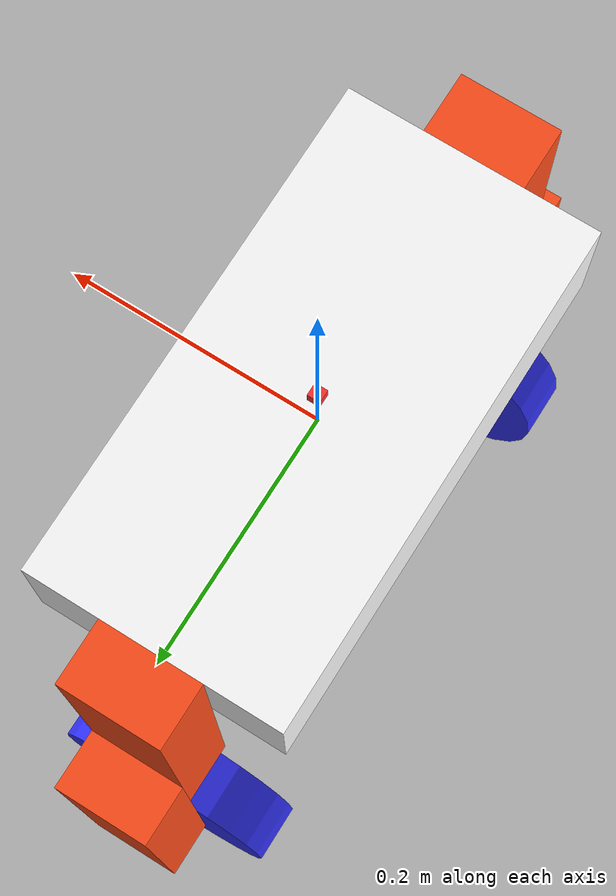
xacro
<?xml version="1.0"?>
<robot xmlns:xacro="http://www.ros.org/wiki/xacro"  name="bipedal_robot">

	<xacro:include filename="include.xacro" />

	<!--*** Define Properties ***-->

	<!-- Base Properties -->
	<xacro:property name="base_length" value="0.2" />
	<xacro:property name="base_height" value="0.1" />
	<xacro:property name="base_width" value="0.4" />
	<xacro:property name="base_mass" value="4" />

	<!-- Leg Properties -->
	<xacro:property name="leg_length" value="0.08" />
	<xacro:property name="leg_height" value="0.3" />
	<xacro:property name="leg_width" value="0.05" />
	<xacro:property name="angle_max" value="1.57" />
	<xacro:property name="angle_min" value="-1.57" />
	<xacro:property name="leg_mass" value="0.5" />

	<!-- Wheel Properties -->
	<xacro:property name="wheel_radius" value="0.1" />
	<xacro:property name="wheel_length" value="0.05" />
	<xacro:property name="wheel_mass" value="1" />

	<!--*** Define Macros ***-->

	<!-- Box Link Macro -->
	<xacro:macro name="box_macro" params="prefix origin_xyz origin_rpy box_size mass box_color">
		<link name="${prefix}_link">
			<visual>
				<origin xyz="${origin_xyz}" rpy="${origin_rpy}"/>
				<geometry>
					<box size="${box_size}" />
				</geometry>
				<material name="${box_color}" />
			</visual>
			<collision>
				<origin xyz="${origin_xyz}" rpy="${origin_rpy}"/>
				<geometry>
					<box size="${box_size}" />
				</geometry>
			</collision>
			<inertial>
				<origin xyz="0 0 0" rpy="0 0 0"/>
				<mass value="${mass}"/>
				<inertia ixx="0.01" ixy="0" ixz="0" iyy="0.01" iyz="0" izz="0.01"/>
			</inertial>
		</link>
	</xacro:macro>

	<!-- Cylinder Link Macro -->
	<xacro:macro name="cylinder_macro" params="prefix origin_xyz origin_rpy cylinder_radius cylinder_length mass">
		<link name="${prefix}_link">
			<visual>
				<origin xyz="${origin_xyz}" rpy="${origin_rpy}"/>
				<geometry>
					<cylinder radius="${cylinder_radius}" length="${cylinder_length}"/>
				</geometry>
				<material name="blue"/>
			</visual>
			<collision>
				<origin xyz="${origin_xyz}" rpy="${origin_rpy}"/>
				<geometry>
					<cylinder radius="${cylinder_radius}" length="${cylinder_length}"/>
				</geometry>
			</collision>
			<inertial>
				<origin xyz="0 0 0" rpy="0 0 0"/>
				<mass value="${mass}"/>
				<inertia ixx="0.01" ixy="0" ixz="0" iyy="0.01" iyz="0" izz="0.01"/>
			</inertial>
		</link>
	</xacro:macro>

	<!-- Revolute Joint Macro -->
	<xacro:macro name="revolute_macro" params="prefix parent child origin_xyz origin_rpy axis_xyz angle_min angle_max">
		<joint name="${prefix}_joint" type="revolute">
			<parent link="${parent}"/>
			<child link="${child}"/>
			<origin xyz="${origin_xyz}" rpy="${origin_rpy}"/>
			<axis xyz="${axis_xyz}"/>
			<limit lower="${angle_min}" upper="${angle_max}" velocity="100" effort="10"/>
			<dynamics damping="0.1" friction="0.1"/>
		</joint>
	</xacro:macro>

	<!-- Continuous Joint Macro -->
	<xacro:macro name="continuous_macro" params="prefix parent child origin_xyz origin_rpy axis_xyz">
		<joint name="${prefix}_joint" type="continuous">
			<parent link="${parent}"/>
			<child link="${child}"/>
			<origin xyz="${origin_xyz}" rpy="${origin_rpy}"/>
			<axis xyz="${axis_xyz}"/>
			<dynamics damping="0.1" friction="0.1"/>
			<limit velocity="100" effort="10"/>
		</joint>
	</xacro:macro>

	<!-- Initializing Macro -->

	<!-- Links -->
	<!-- World -->
	<xacro:box_macro prefix="base" origin_xyz="0 0 0" origin_rpy="0 0 0" box_size="${base_length} ${base_width} ${base_height}" mass="${base_mass}" box_color="white"/>
	<!-- Right Leg -->
	<xacro:box_macro prefix="right_upper_leg" origin_xyz="0 0 ${-leg_height/2+base_height/2}" origin_rpy="0 0 0" box_size="${leg_length} ${leg_width} ${leg_height}" mass="${leg_mass}" box_color="orange"/>
	<xacro:box_macro prefix="right_lower_leg" origin_xyz="0 0 ${-leg_height/2+base_height/2}" origin_rpy="0 0 0" box_size="${leg_length} ${leg_width} ${leg_height}" mass="${leg_mass}" box_color="orange"/>
	<xacro:cylinder_macro prefix="right_wheel" origin_xyz="0 0 0" origin_rpy="0 0 0" cylinder_radius="${wheel_radius}" cylinder_length="${wheel_length}" mass="${wheel_mass}"/>
	<!-- Left Leg -->
	<xacro:box_macro prefix="left_upper_leg" origin_xyz="0 0 ${-leg_height/2+base_height/2}" origin_rpy="0 0 0" box_size="${leg_length} ${leg_width} ${leg_height}" mass="${leg_mass}" box_color="orange"/>
	<xacro:box_macro prefix="left_lower_leg" origin_xyz="0 0 ${-leg_height/2+base_height/2}" origin_rpy="0 0 0" box_size="${leg_length} ${leg_width} ${leg_height}" mass="${leg_mass}" box_color="orange"/>
	<xacro:cylinder_macro prefix="left_wheel" origin_xyz="0 0 0" origin_rpy="0 0 0" cylinder_radius="${wheel_radius}" cylinder_length="${wheel_length}" mass="${wheel_mass}"/>
	<!-- IMU -->
	<link name="IMU_link">
		<inertial>
			<mass value="0.001"/>
			<origin rpy="0 0 0" xyz="0 0 0"/>
			<inertia ixx="0.0001" ixy="0" ixz="0" iyy="0.000001" iyz="0" izz="0.0001"/>
		</inertial>
		<visual>
			<origin rpy="0 0 0" xyz="0 0 0"/>
			<geometry>
				<box size="0.01 0.01 0.01"/>
			</geometry>
			<material name="red"/>
		</visual>
		<collision>
			<origin rpy="0 0 0" xyz="0 0 0"/>
			<geometry>
				<box size=".01 .01 .01"/>
			</geometry>
		</collision>
	</link>

	<!-- Joints -->
	<!-- Hip -->
	<xacro:revolute_macro prefix="hip_right" parent="base_link" child="right_upper_leg_link" origin_xyz="0 ${base_length+leg_width/2} 0" origin_rpy="0 0 0" axis_xyz="0 1 0" angle_min="${angle_min}" angle_max="${angle_max}"/>
	<xacro:revolute_macro prefix="hip_left" parent="base_link" child="left_upper_leg_link" origin_xyz="0 ${-base_length-leg_width/2} 0" origin_rpy="0 0 0" axis_xyz="0 1 0" angle_min="${angle_min}" angle_max="${angle_max}"/>
	<!-- Knee -->
	<xacro:revolute_macro prefix="knee_right" parent="right_upper_leg_link" child="right_lower_leg_link" origin_xyz="0 ${leg_width} ${-leg_height+base_height/2+leg_length/2}" origin_rpy="0 0 0" axis_xyz="0 1 0" angle_min="${angle_min}" angle_max="${angle_max}"/>
	<xacro:revolute_macro prefix="knee_left" parent="left_upper_leg_link" child="left_lower_leg_link" origin_xyz="0 ${-leg_width} ${-leg_height+base_height/2+leg_length/2}" origin_rpy="0 0 0" axis_xyz="0 1 0" angle_min="${angle_min}" angle_max="${angle_max}"/>
	<!-- Ankle -->
	<xacro:continuous_macro prefix="ankle_right" parent="right_lower_leg_link" child="right_wheel_link" origin_xyz="0 ${-leg_width} ${-leg_height+base_height/2+leg_length/2}" origin_rpy="1.57 0 0" axis_xyz="0 0 1"/>
	<xacro:continuous_macro prefix="ankle_left" parent="left_lower_leg_link" child="left_wheel_link" origin_xyz="0 ${leg_width} ${-leg_height+base_height/2+leg_length/2}" origin_rpy="1.57 0 0" axis_xyz="0 0 1"/>
	<!-- IMU -->
	<joint name="IMU_joint" type="fixed">
		<axis xyz="1 0 0"/>
		<origin xyz="0 0 ${base_height/2+0.01/2}"/>
		<parent link="base_link"/>
		<child link="IMU_link"/>
		<inertial>
			<origin xyz="0 0 0" rpy="0 0 0"/>
			<mass value="0.001"/>
			<inertia ixx="0.001" ixy="0" ixz="0" iyy="0.001" iyz="0" izz="0.001"/>
		</inertial>
	</joint>

	<!-- Include Gazebo Description File -->
	<xacro:include filename="gazebo.xacro" />

	<!-- Include Control File -->
	<xacro:include filename="ros2_control.xacro" />
</robot>

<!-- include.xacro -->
<robot xmlns:xacro="http://www.ros.org/wiki/xacro" >

    <!-- This file is not a robot in and of itself, it just contains some useful tags that could be included in any robot -->

    <!-- Specify some colours -->

    <material name="white">
        <color rgba="1 1 1 1"/>
    </material>

    <material name="orange">
        <color rgba="1 0.3 0.1 1"/>
    </material>

    <material name="blue">
        <color rgba="0.2 0.2 1 1"/>
    </material>

	    <material name="red">
        <color rgba="1 0.2 0.2 1"/>
    </material>

    <!-- Specify some standard inertial calculations https://en.wikipedia.org/wiki/List_of_moments_of_inertia -->
    <!-- These make use of xacro's mathematical functionality -->

    <xacro:macro name="inertial_sphere" params="mass radius *origin">
        <inertial>
            <xacro:insert_block name="origin"/>
            <mass value="${mass}" />
            <inertia ixx="${(2/5) * mass * (radius*radius)}" ixy="0.0" ixz="0.0"
                    iyy="${(2/5) * mass * (radius*radius)}" iyz="0.0"
                    izz="${(2/5) * mass * (radius*radius)}" />
        </inertial>
    </xacro:macro>

    <xacro:macro name="inertial_box" params="mass x y z *origin">
        <inertial>
            <xacro:insert_block name="origin"/>
            <mass value="${mass}" />
            <inertia ixx="${(1/12) * mass * (y*y+z*z)}" ixy="0.0" ixz="0.0"
                    iyy="${(1/12) * mass * (x*x+z*z)}" iyz="0.0"
                    izz="${(1/12) * mass * (x*x+y*y)}" />
        </inertial>
    </xacro:macro>

    <xacro:macro name="inertial_cylinder" params="mass length radius *origin">
        <inertial>
            <xacro:insert_block name="origin"/>
            <mass value="${mass}" />
            <inertia ixx="${(1/12) * mass * (3*radius*radius + length*length)}" ixy="0.0" ixz="0.0"
                    iyy="${(1/12) * mass * (3*radius*radius + length*length)}" iyz="0.0"
                    izz="${(1/2) * mass * (radius*radius)}" />
        </inertial>
    </xacro:macro>

</robot>
